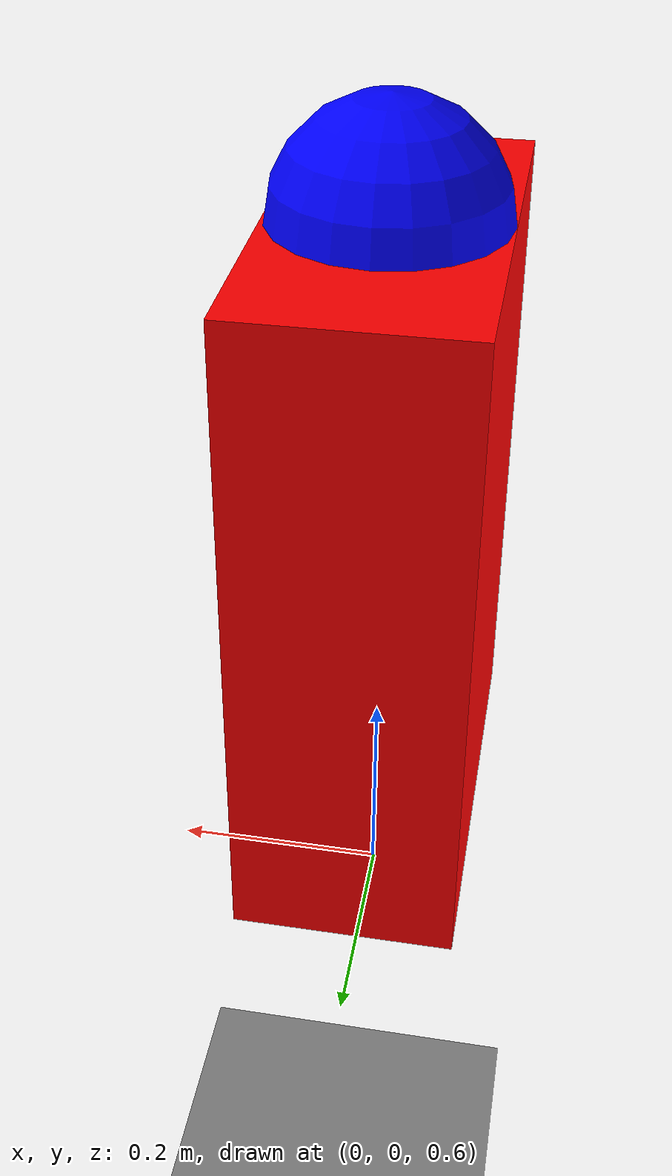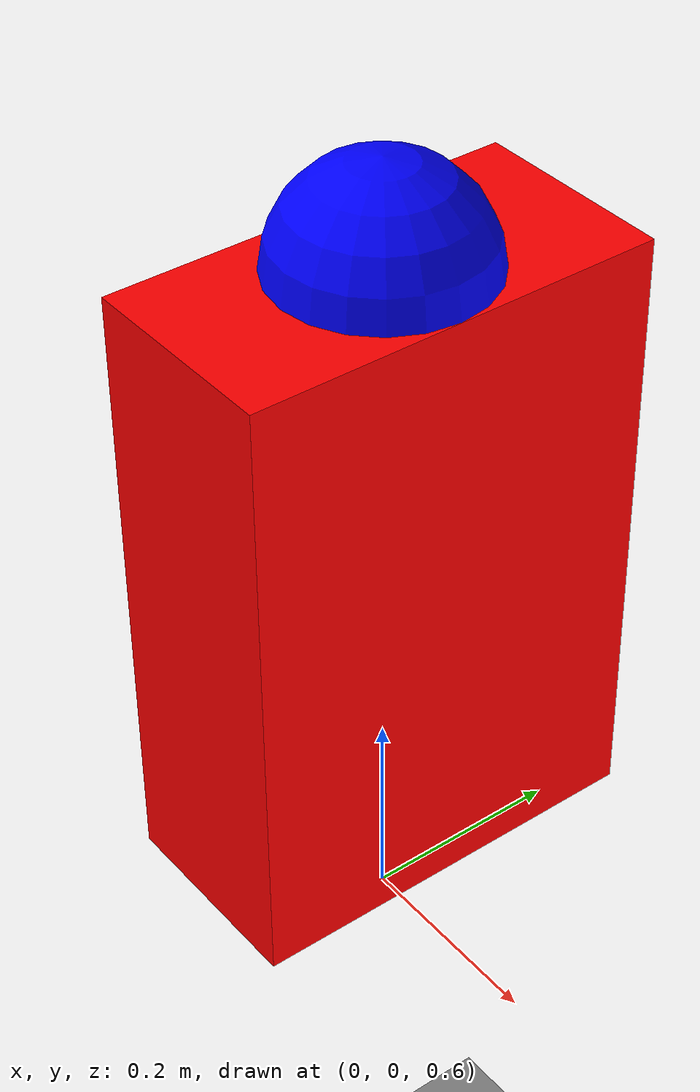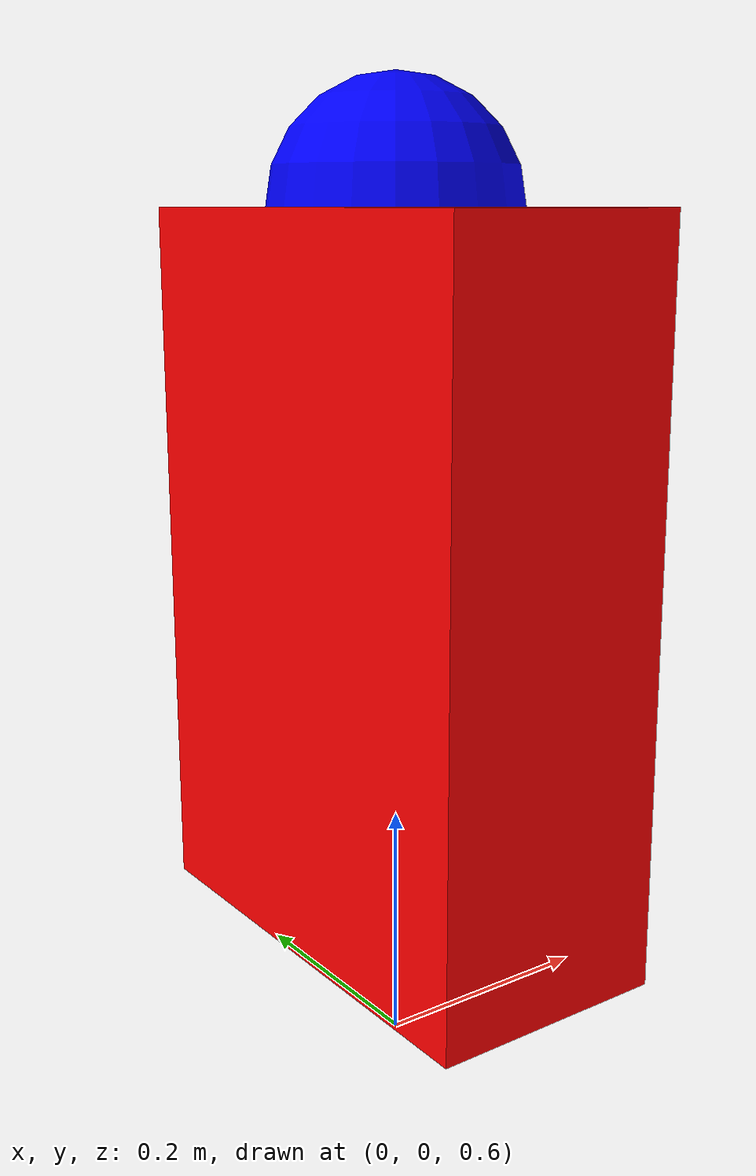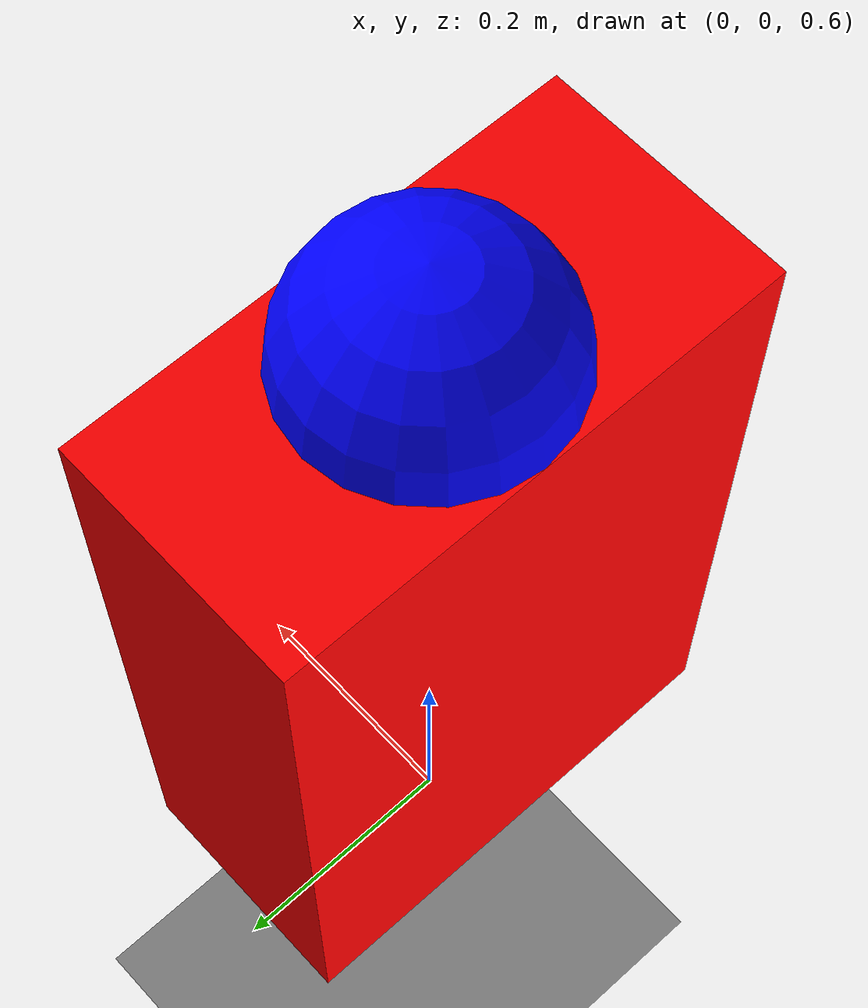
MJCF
<mujoco>
    <worldbody>
        <light diffuse=".5 .5 .5" pos="0 0 3" dir="0 0 -1"/>
        <geom type="plane" size="1 1 0.1" rgba="0.5 0.5 0.5 1"/>
        <body pos="0 0 1">
            <joint type="free"/>
            <geom name="box" type="box" size=".1 .2 .3" rgba="1 0 0 1"/>
            <geom type="sphere" size=".1 .2 .3" rgba="0 0 1 1" pos="0 0 0.3"/>
        </body>
    </worldbody>
</mujoco>
